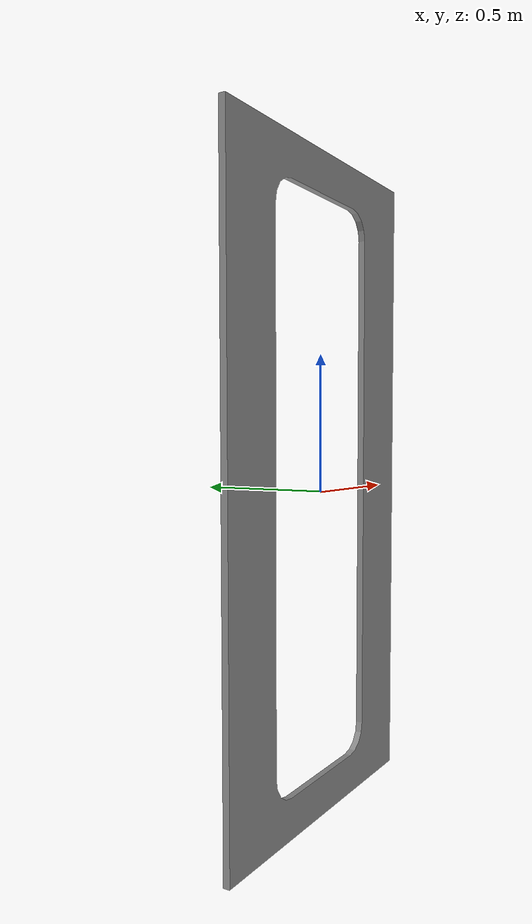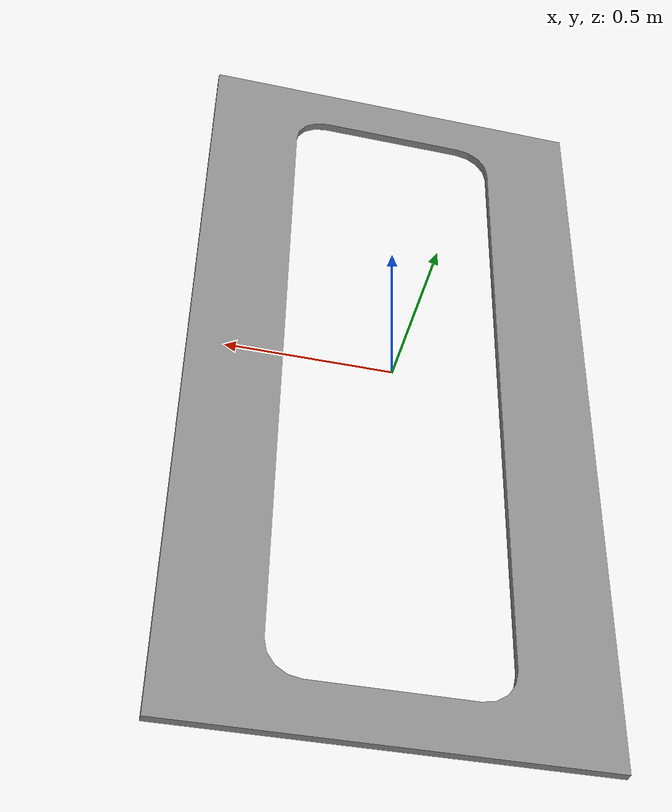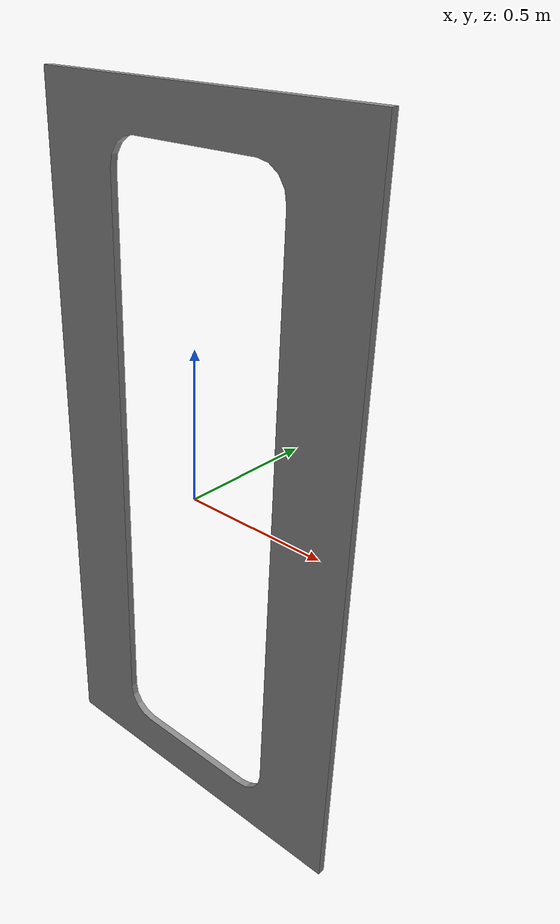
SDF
<?xml version="1.0" ?>
<sdf version="1.5">
  <model name="door_4x8">
    <static>true</static>
    <link name="door">
      <collision name="collision">
        <geometry>
          <mesh>
            <uri>model://drc_practice_door_4x8/meshes/4x8ftdoor.dae</uri>
          </mesh>
        </geometry>
      </collision>
      <visual name="visual">
        <geometry>
          <mesh>
            <uri>model://drc_practice_door_4x8/meshes/4x8ftdoor.dae</uri>
          </mesh>
        </geometry>
      </visual>
    </link>
  </model>
</sdf>
